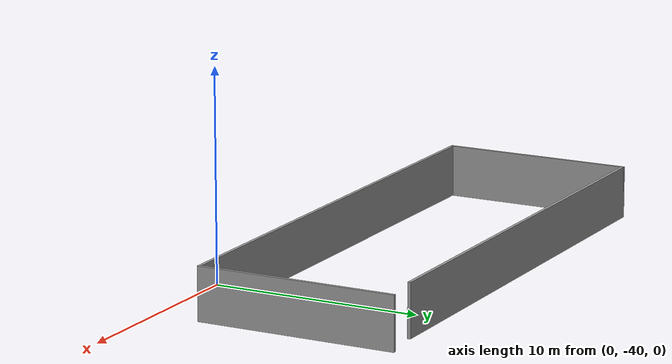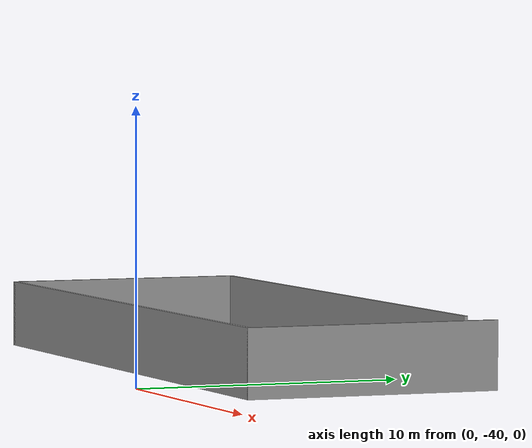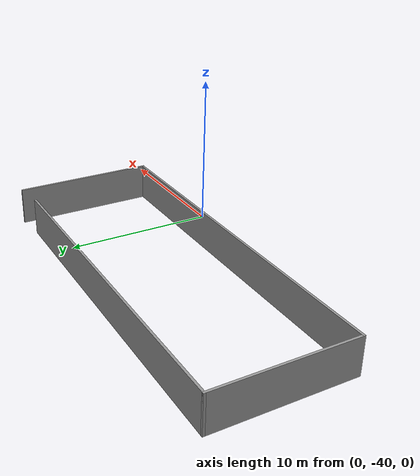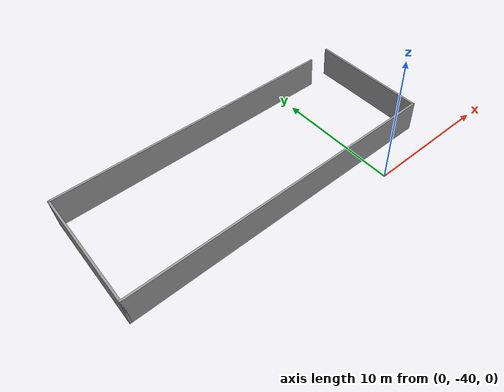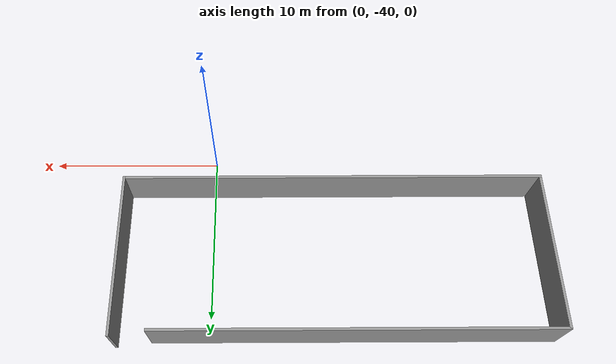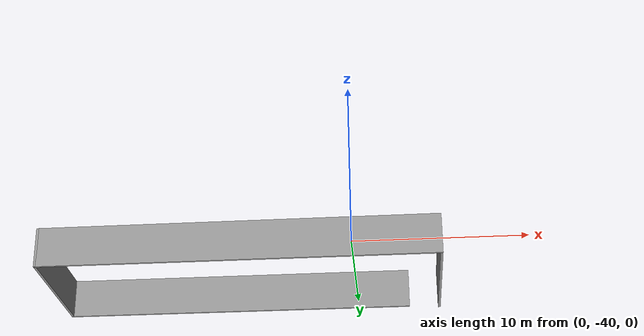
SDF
<?xml version='1.0'?>
<sdf version='1.6'>
  <model name='room3'>
    <pose frame=''>-6.98632 -33.1388 0 0 -0 0</pose>
    <link name='Wall_25'>
      <collision name='Wall_25_Collision'>
        <geometry>
          <box>
            <size>22.5 0.15 2.5</size>
          </box>
        </geometry>
        <pose frame=''>0 0 1.25 0 -0 0</pose>
      </collision>
      <visual name='Wall_25_Visual'>
        <pose frame=''>0 0 1.25 0 -0 0</pose>
        <geometry>
          <box>
            <size>22.5 0.15 2.5</size>
          </box>
        </geometry>
        <material>
          <script>
            <uri>file://media/materials/scripts/gazebo.material</uri>
            <name>Gazebo/Grey</name>
          </script>
          <ambient>1 1 1 1</ambient>
        </material>
        <meta>
          <layer>0</layer>
        </meta>
      </visual>
      <pose frame=''>-1 4.425 0 0 -0 0</pose>
    </link>
    <link name='Wall_28'>
      <collision name='Wall_28_Collision'>
        <geometry>
          <box>
            <size>9.25 0.15 2.5</size>
          </box>
        </geometry>
        <pose frame=''>0 0 1.25 0 -0 0</pose>
      </collision>
      <visual name='Wall_28_Visual'>
        <pose frame=''>0 0 1.25 0 -0 0</pose>
        <geometry>
          <box>
            <size>9.25 0.15 2.5</size>
          </box>
        </geometry>
        <material>
          <script>
            <uri>file://media/materials/scripts/gazebo.material</uri>
            <name>Gazebo/Grey</name>
          </script>
          <ambient>1 1 1 1</ambient>
        </material>
        <meta>
          <layer>0</layer>
        </meta>
      </visual>
      <pose frame=''>-12.175 -0.125 0 0 -0 -1.5708</pose>
    </link>
    <link name='Wall_29'>
      <collision name='Wall_29_Collision'>
        <geometry>
          <box>
            <size>24.5 0.15 2.5</size>
          </box>
        </geometry>
        <pose frame=''>0 0 1.25 0 -0 0</pose>
      </collision>
      <visual name='Wall_29_Visual'>
        <pose frame=''>0 0 1.25 0 -0 0</pose>
        <geometry>
          <box>
            <size>24.5 0.15 2.5</size>
          </box>
        </geometry>
        <material>
          <script>
            <uri>file://media/materials/scripts/gazebo.material</uri>
            <name>Gazebo/Grey</name>
          </script>
          <ambient>1 1 1 1</ambient>
        </material>
        <meta>
          <layer>0</layer>
        </meta>
      </visual>
      <pose frame=''>0 -4.675 0 0 -0 0</pose>
    </link>
    <link name='Wall_30'>
      <collision name='Wall_30_Collision'>
        <geometry>
          <box>
            <size>9.5 0.15 2.5</size>
          </box>
        </geometry>
        <pose frame=''>0 0 1.25 0 -0 0</pose>
      </collision>
      <visual name='Wall_30_Visual'>
        <pose frame=''>0 0 1.25 0 -0 0</pose>
        <geometry>
          <box>
            <size>9.5 0.15 2.5</size>
          </box>
        </geometry>
        <material>
          <script>
            <uri>file://media/materials/scripts/gazebo.material</uri>
            <name>Gazebo/Grey</name>
          </script>
          <ambient>1 1 1 1</ambient>
        </material>
        <meta>
          <layer>0</layer>
        </meta>
      </visual>
      <pose frame=''>12.175 0 0 0 -0 1.5708</pose>
    </link>
    <static>1</static>
  </model>
</sdf>
